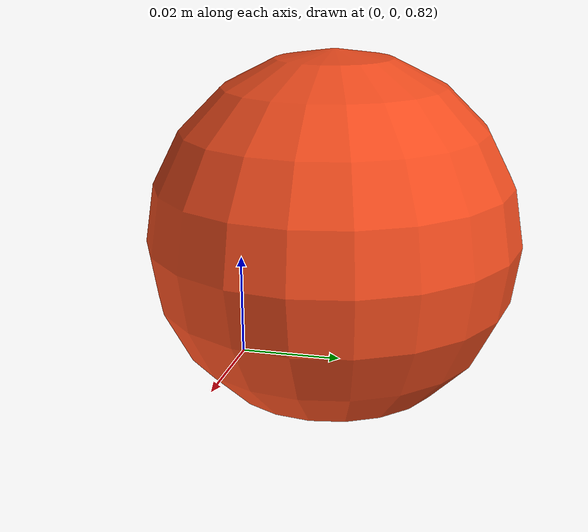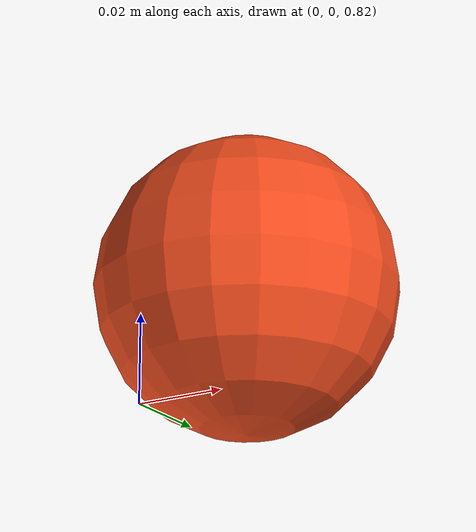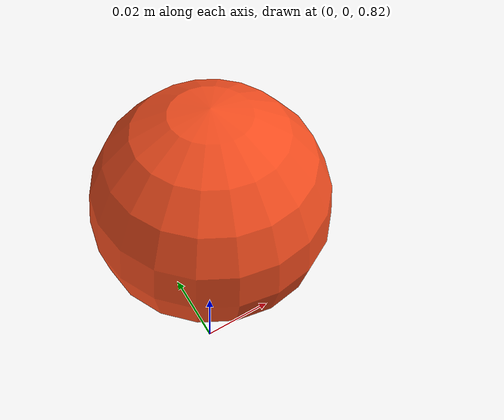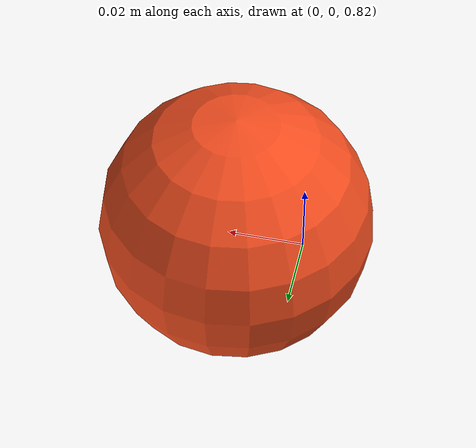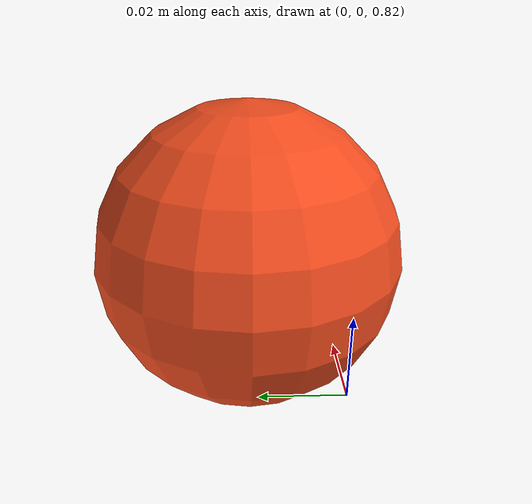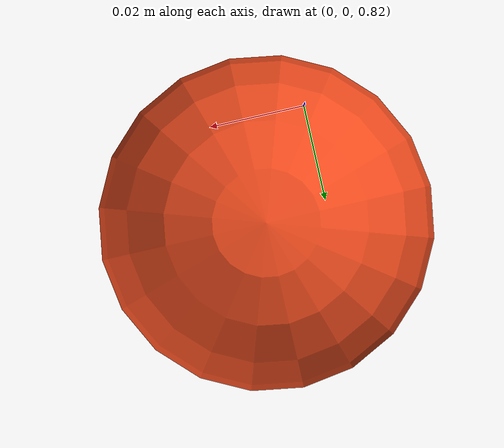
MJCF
<mujoco model="leap hand falling ball catch scene">
  <statistic center="0 0 0.62" extent="0.45"/>
  <visual>
    <headlight diffuse="0.6 0.6 0.6" ambient="0.3 0.3 0.3" specular="0 0 0"/>
    <rgba haze="0.15 0.25 0.35 1"/>
    <global azimuth="135" elevation="-20"/>
  </visual>
  <asset>
    <texture type="skybox" builtin="gradient" rgb1="0.20 0.32 0.48"
             rgb2="0.04 0.07 0.12" width="512" height="3072"/>
    <texture type="2d" name="catch_ground_tex" builtin="checker" mark="edge"
             rgb1="0.18 0.34 0.52" rgb2="0.08 0.20 0.34"
             markrgb="0.40 0.58 0.74" width="512" height="512"/>
    <material name="catch_ground" texture="catch_ground_tex"
              texuniform="true" texrepeat="12 12" reflectance="0.15"/>
  </asset>
  <worldbody>
    <light pos="0 0 1.5" dir="0 0 -1" directional="true"/>
    <geom name="floor" pos="0 0 0" size="0 0 0.05" type="plane"
          material="catch_ground"/>
    <body name="ball" pos="0.013 0.022 0.85">
      <freejoint name="ball_joint"/>
      <geom name="ball" type="sphere" size="0.0335" mass="0.057" condim="6"
            friction="1.2 0.04 0.01" solimp="0.90 0.95 0.001" solref="0.01 0.30"
            rgba="0.95 0.3 0.12 1"/>
    </body>
  </worldbody>
  <sensor>
    <!-- Contact truth comes from collision geoms, not offset body origins. -->
    <contact name="leap_ff_contact" geom1="fingertip_collision"
             geom2="ball" data="found" num="1" reduce="mindist"/>
    <contact name="leap_mf_contact" geom1="fingertip_2_collision"
             geom2="ball" data="found" num="1" reduce="mindist"/>
    <contact name="leap_rf_contact" geom1="fingertip_3_collision"
             geom2="ball" data="found" num="1" reduce="mindist"/>
    <contact name="leap_th_contact" geom1="thumb_fingertip_collision"
             geom2="ball" data="found" num="1" reduce="mindist"/>
    <contact name="leap_palm_contact" geom1="palm_lower_collision"
             geom2="ball" data="found" num="1" reduce="mindist"/>
    <!-- Explicit pad-frame measurements keep reward geometry independent of mesh origins. -->
    <framepos name="leap_ff_pad_pos" objtype="site" objname="ff_pad_center"/>
    <framepos name="leap_ff_pad_normal_pos" objtype="site" objname="ff_pad_normal"/>
    <framepos name="leap_mf_pad_pos" objtype="site" objname="mf_pad_center"/>
    <framepos name="leap_mf_pad_normal_pos" objtype="site" objname="mf_pad_normal"/>
    <framepos name="leap_rf_pad_pos" objtype="site" objname="rf_pad_center"/>
    <framepos name="leap_rf_pad_normal_pos" objtype="site" objname="rf_pad_normal"/>
    <framepos name="leap_th_pad_pos" objtype="site" objname="th_pad_center"/>
    <framepos name="leap_th_pad_normal_pos" objtype="site" objname="th_pad_normal"/>
  </sensor>
  <keyframe>
    <key name="home"
      qpos="0.70 -0.10 0.60 0.45 0.74 0.0 0.66 0.50 0.80 0.10 0.72 0.55 0.80 0.60 0.90 0.60 0.013 0.022 0.85 1 0 0 0"
      ctrl="0.70 -0.10 0.60 0.45 0.74 0.0 0.66 0.50 0.80 0.10 0.72 0.55 0.80 0.60 0.90 0.60"/>
  </keyframe>
</mujoco>
